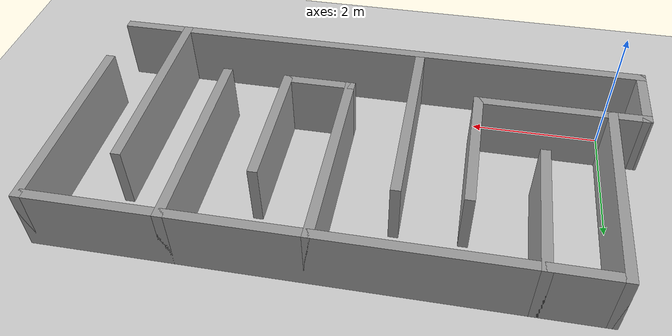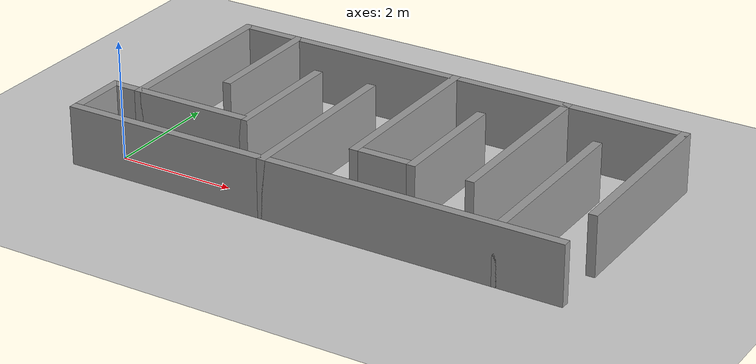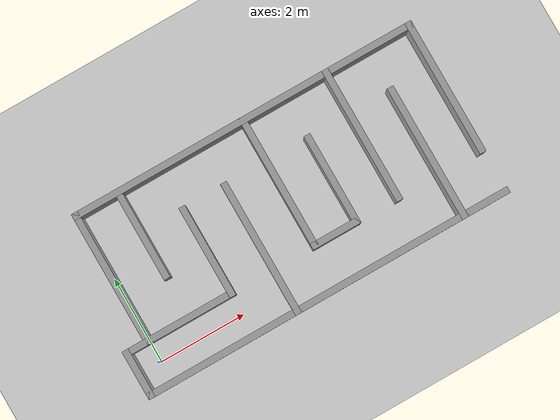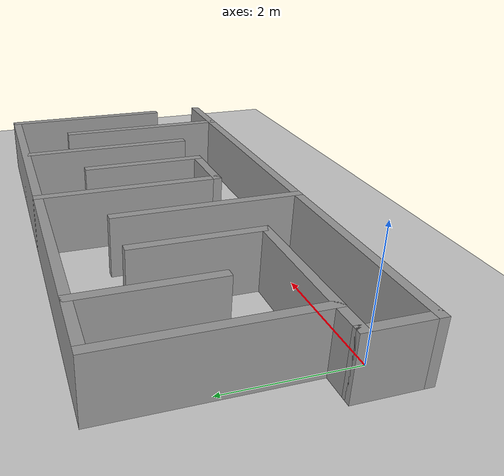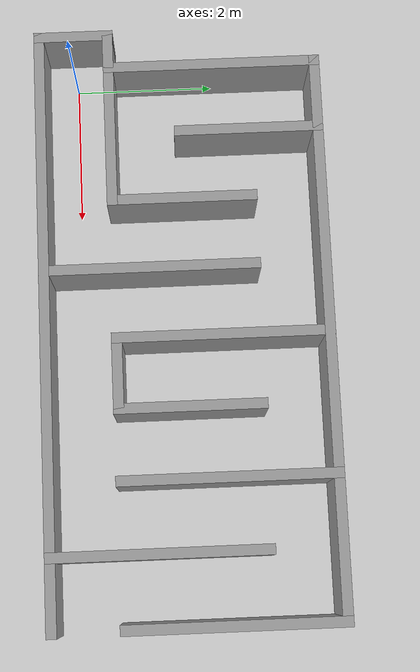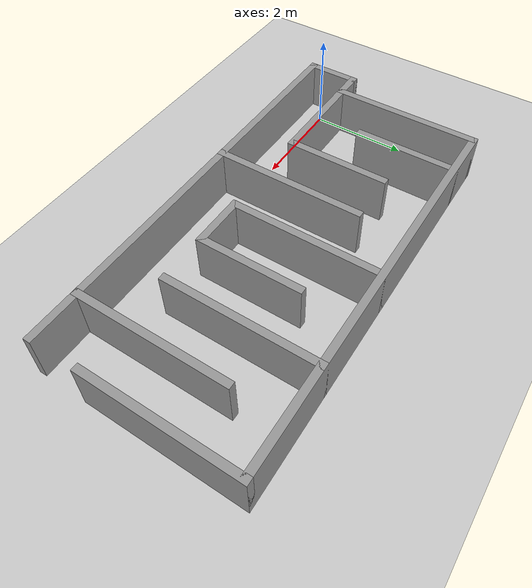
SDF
<sdf version="1.7">
 <world name="default">
  <scene><ambient>0.4 0.4 0.4 1</ambient><background>0.7 0.7 0.7 1</background><shadows>1</shadows></scene>
  <light name="sun" type="directional">
   <pose>0 0 10 0 -0 0</pose>
   <diffuse>0.8 0.8 0.8 1</diffuse>
   <specular>0.2 0.2 0.2 1</specular>
   <attenuation>
    <range>1000</range>
    <constant>0.9</constant>
    <linear>0.01</linear>
    <quadratic>0.001</quadratic>
   </attenuation>
   <direction>-0.5 0.1 -0.9</direction>
   <spot><inner_angle>0</inner_angle><outer_angle>0</outer_angle><falloff>0</falloff></spot>
  </light>
  <model name="ground_plane">
   <static>1</static>
   <link name="link">
    <collision name="collision">
     <geometry><plane><normal>0 0 1</normal><size>100 100</size></plane></geometry>
     <surface>
      <contact><collide_bitmask>65535</collide_bitmask></contact>
      <friction><ode><mu>100</mu><mu2>50</mu2></ode></friction>
     </surface>
    </collision>
    <visual name="visual">
     <cast_shadows>0</cast_shadows>
     <geometry><plane><normal>0 0 1</normal><size>100 100</size></plane></geometry>
     <material>
      <script><uri>file://media/materials/scripts/gazebo.material</uri><name>Gazebo/Grey</name></script>
     </material>
    </visual>
   </link>
  </model>
  <physics type="ode">
   <real_time_update_rate>1000</real_time_update_rate>
   <max_step_size>0.001</max_step_size>
   <real_time_factor>1</real_time_factor>
   <ode>
    <solver>
     <type>quick</type>
     <iters>150</iters>
     <precon_iters>0</precon_iters>
     <sor>1.4</sor>
     <use_dynamic_moi_rescaling>1</use_dynamic_moi_rescaling>
    </solver>
    <constraints>
     <cfm>1e-05</cfm>
     <erp>0.2</erp>
     <contact_max_correcting_vel>2000</contact_max_correcting_vel>
     <contact_surface_layer>0.01</contact_surface_layer>
    </constraints>
   </ode>
  </physics>
  <gravity>0 0 -9.8</gravity>
  <magnetic_field>6e-06 2.3e-05 -4.2e-05</magnetic_field>
  <atmosphere type="adiabatic"/>
  <spherical_coordinates>
   <surface_model>EARTH_WGS84</surface_model>
   <latitude_deg>0</latitude_deg>
   <longitude_deg>0</longitude_deg>
   <elevation>0</elevation>
   <heading_deg>0</heading_deg>
  </spherical_coordinates>
  <model name="maze_1">
   <pose>3.75 1.5 0 0 -0 0</pose>
   <link name="Wall_16">
    <collision name="Wall_16_Collision">
     <geometry><box><size>3.15 0.15 1</size></box></geometry>
     <pose>0 0 0.5 0 -0 0</pose>
    </collision>
    <visual name="Wall_16_Visual">
     <pose>0 0 0.5 0 -0 0</pose>
     <geometry><box><size>3.15 0.15 1</size></box></geometry>
     <material>
      <script><uri>file://media/materials/scripts/gazebo.material</uri><name>Gazebo/Grey</name></script>
      <ambient>1 1 1 1</ambient>
     </material>
     <meta><layer>0</layer></meta>
    </visual>
    <pose>-3.75 0.5 0 0 -0 1.5708</pose>
   </link>
   <link name="Wall_19">
    <collision name="Wall_19_Collision">
     <geometry><box><size>8.15 0.15 1</size></box></geometry>
     <pose>0 0 0.5 0 -0 0</pose>
    </collision>
    <visual name="Wall_19_Visual">
     <pose>0 0 0.5 0 -0 0</pose>
     <geometry><box><size>8.15 0.15 1</size></box></geometry>
     <material>
      <script><uri>file://media/materials/scripts/gazebo.material</uri><name>Gazebo/Grey</name></script>
      <ambient>1 1 1 1</ambient>
     </material>
     <meta><layer>0</layer></meta>
    </visual>
    <pose>0.25 2 0 0 -0 0</pose>
   </link>
   <link name="Wall_21">
    <collision name="Wall_21_Collision">
     <geometry><box><size>3.15 0.15 1</size></box></geometry>
     <pose>0 0 0.5 0 -0 0</pose>
    </collision>
    <visual name="Wall_21_Visual">
     <pose>0 0 0.5 0 -0 0</pose>
     <geometry><box><size>3.15 0.15 1</size></box></geometry>
     <material>
      <script><uri>file://media/materials/scripts/gazebo.material</uri><name>Gazebo/Grey</name></script>
      <ambient>1 1 1 1</ambient>
     </material>
     <meta><layer>0</layer></meta>
    </visual>
    <pose>4.25 0.5 0 0 -0 -1.5708</pose>
   </link>
   <link name="Wall_23">
    <collision name="Wall_23_Collision">
     <geometry><box><size>2.15 0.15 1</size></box></geometry>
     <pose>0 0 0.5 0 -0 0</pose>
    </collision>
    <visual name="Wall_23_Visual">
     <pose>0 0 0.5 0 -0 0</pose>
     <geometry><box><size>2.15 0.15 1</size></box></geometry>
     <material>
      <script><uri>file://media/materials/scripts/gazebo.material</uri><name>Gazebo/Grey</name></script>
      <ambient>1 1 1 1</ambient>
     </material>
     <meta><layer>0</layer></meta>
    </visual>
    <pose>-2.75 1 0 0 -0 -1.5708</pose>
   </link>
   <link name="Wall_26">
    <collision name="Wall_26_Collision">
     <geometry><box><size>2.15 0.15 1</size></box></geometry>
     <pose>0 0 0.5 0 -0 0</pose>
    </collision>
    <visual name="Wall_26_Visual">
     <pose>0 0 0.5 0 -0 0</pose>
     <geometry><box><size>2.15 0.15 1</size></box></geometry>
     <material>
      <script><uri>file://media/materials/scripts/gazebo.material</uri><name>Gazebo/Grey</name></script>
      <ambient>1 1 1 1</ambient>
     </material>
     <meta><layer>0</layer></meta>
    </visual>
    <pose>-1.75 0 0 0 -0 1.5708</pose>
   </link>
   <link name="Wall_28">
    <collision name="Wall_28_Collision">
     <geometry><box><size>3.15 0.15 1</size></box></geometry>
     <pose>0 0 0.5 0 -0 0</pose>
    </collision>
    <visual name="Wall_28_Visual">
     <pose>0 0 0.5 0 -0 0</pose>
     <geometry><box><size>3.15 0.15 1</size></box></geometry>
     <material>
      <script><uri>file://media/materials/scripts/gazebo.material</uri><name>Gazebo/Grey</name></script>
      <ambient>1 1 1 1</ambient>
     </material>
     <meta><layer>0</layer></meta>
    </visual>
    <pose>-0.75 -0.5 0 0 -0 1.5708</pose>
   </link>
   <link name="Wall_30">
    <collision name="Wall_30_Collision">
     <geometry><box><size>3.15 0.15 1</size></box></geometry>
     <pose>0 0 0.5 0 -0 0</pose>
    </collision>
    <visual name="Wall_30_Visual">
     <pose>0 0 0.5 0 -0 0</pose>
     <geometry><box><size>3.15 0.15 1</size></box></geometry>
     <material>
      <script><uri>file://media/materials/scripts/gazebo.material</uri><name>Gazebo/Grey</name></script>
      <ambient>1 1 1 1</ambient>
     </material>
     <meta><layer>0</layer></meta>
    </visual>
    <pose>0.25 0.5 0 0 -0 1.5708</pose>
   </link>
   <link name="Wall_32">
    <collision name="Wall_32_Collision">
     <geometry><box><size>1.15 0.15 1</size></box></geometry>
     <pose>0 0 0.5 0 -0 0</pose>
    </collision>
    <visual name="Wall_32_Visual">
     <pose>0 0 0.5 0 -0 0</pose>
     <geometry><box><size>1.15 0.15 1</size></box></geometry>
     <material>
      <script><uri>file://media/materials/scripts/gazebo.material</uri><name>Gazebo/Grey</name></script>
      <ambient>1 1 1 1</ambient>
     </material>
     <meta><layer>0</layer></meta>
    </visual>
    <pose>0.75 -1 0 0 -0 0</pose>
   </link>
   <link name="Wall_34">
    <collision name="Wall_34_Collision">
     <geometry><box><size>2.15 0.15 1</size></box></geometry>
     <pose>0 0 0.5 0 -0 0</pose>
    </collision>
    <visual name="Wall_34_Visual">
     <pose>0 0 0.5 0 -0 0</pose>
     <geometry><box><size>2.15 0.15 1</size></box></geometry>
     <material>
      <script><uri>file://media/materials/scripts/gazebo.material</uri><name>Gazebo/Grey</name></script>
      <ambient>1 1 1 1</ambient>
     </material>
     <meta><layer>0</layer></meta>
    </visual>
    <pose>1.25 0 0 0 -0 1.5708</pose>
   </link>
   <link name="Wall_36">
    <collision name="Wall_36_Collision">
     <geometry><box><size>3.15 0.15 1</size></box></geometry>
     <pose>0 0 0.5 0 -0 0</pose>
    </collision>
    <visual name="Wall_36_Visual">
     <pose>0 0 0.5 0 -0 0</pose>
     <geometry><box><size>3.15 0.15 1</size></box></geometry>
     <material>
      <script><uri>file://media/materials/scripts/gazebo.material</uri><name>Gazebo/Grey</name></script>
      <ambient>1 1 1 1</ambient>
     </material>
     <meta><layer>0</layer></meta>
    </visual>
    <pose>2.25 0.5 0 0 -0 -1.5708</pose>
   </link>
   <link name="Wall_38">
    <collision name="Wall_38_Collision">
     <geometry><box><size>3.15 0.15 1</size></box></geometry>
     <pose>0 0 0.5 0 -0 0</pose>
    </collision>
    <visual name="Wall_38_Visual">
     <pose>0 0 0.5 0 -0 0</pose>
     <geometry><box><size>3.15 0.15 1</size></box></geometry>
     <material>
      <script><uri>file://media/materials/scripts/gazebo.material</uri><name>Gazebo/Grey</name></script>
      <ambient>1 1 1 1</ambient>
     </material>
     <meta><layer>0</layer></meta>
    </visual>
    <pose>3.25 -0.5 0 0 -0 1.5708</pose>
   </link>
   <link name="Wall_4">
    <collision name="Wall_4_Collision">
     <geometry><box><size>8.65 0.15 1</size></box></geometry>
     <pose>0 0 0.5 0 -0 0</pose>
    </collision>
    <visual name="Wall_4_Visual">
     <pose>0 0 0.5 0 -0 0</pose>
     <geometry><box><size>8.65 0.15 1</size></box></geometry>
     <material>
      <script><uri>file://media/materials/scripts/gazebo.material</uri><name>Gazebo/Grey</name></script>
      <ambient>1 1 1 1</ambient>
     </material>
     <meta><layer>0</layer></meta>
    </visual>
    <pose>0 -2 0 0 -0 0</pose>
   </link>
   <link name="Wall_7">
    <collision name="Wall_7_Collision">
     <geometry><box><size>1.15 0.15 1</size></box></geometry>
     <pose>0 0 0.5 0 -0 0</pose>
    </collision>
    <visual name="Wall_7_Visual">
     <pose>0 0 0.5 0 -0 0</pose>
     <geometry><box><size>1.15 0.15 1</size></box></geometry>
     <material>
      <script><uri>file://media/materials/scripts/gazebo.material</uri><name>Gazebo/Grey</name></script>
      <ambient>1 1 1 1</ambient>
     </material>
     <meta><layer>0</layer></meta>
    </visual>
    <pose>-4.25 -1.5 0 0 -0 1.5708</pose>
   </link>
   <link name="Wall_9">
    <collision name="Wall_9_Collision">
     <geometry><box><size>2.65 0.15 1</size></box></geometry>
     <pose>0 0 0.5 0 -0 0</pose>
    </collision>
    <visual name="Wall_9_Visual">
     <pose>0 0 0.5 0 -0 0</pose>
     <geometry><box><size>2.65 0.15 1</size></box></geometry>
     <material>
      <script><uri>file://media/materials/scripts/gazebo.material</uri><name>Gazebo/Grey</name></script>
      <ambient>1 1 1 1</ambient>
     </material>
     <meta><layer>0</layer></meta>
    </visual>
    <pose>-3 -1 0 0 -0 0</pose>
   </link>
   <static>1</static>
  </model>
 </world>
</sdf>
